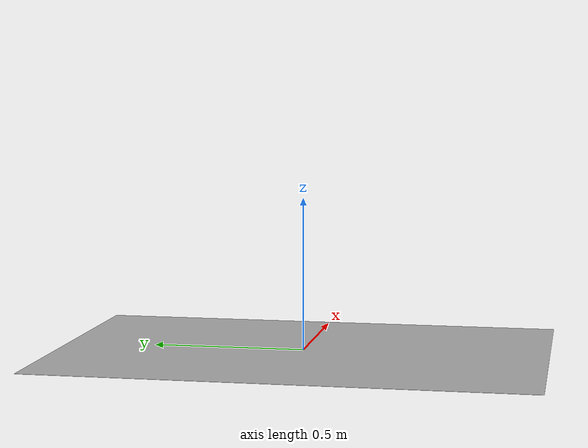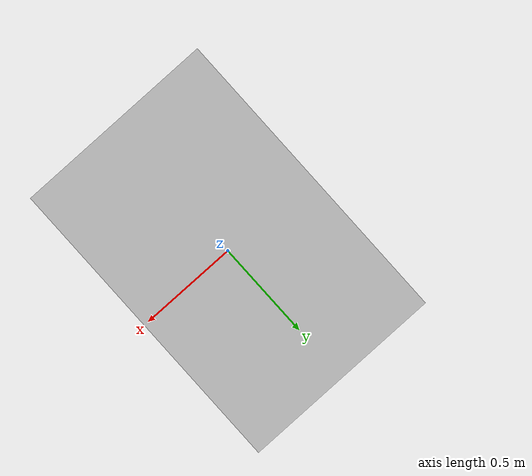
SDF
<?xml version="1.0"?>
<sdf version="1.4">
<model name="fnr_park">
  <static>true</static>
    <link name="link">
      <collision name="collision">
        <geometry>
          <plane>
            <normal>0 0 1</normal>
            <size>1.05 1.6</size>
          </plane>
        </geometry>
        <surface>
          <friction>
            <ode>
              <mu>100</mu>
              <mu2>50</mu2>
            </ode>
          </friction>
        </surface>
      </collision>
      <visual name="visual">
        <cast_shadows>false</cast_shadows>
        <geometry>
          <plane>
            <normal>0 0 1</normal>
            <size>1.05 1.6</size>
          </plane>
        </geometry>
        <material>
          <script>
	        <uri>model://FNR_park/materials/scripts</uri>
	        <uri>model://FNR_park/materials/textures</uri>
            <name>Park/Image</name>
          </script>
        </material>
      </visual>
    </link>
  </model>
</sdf>
